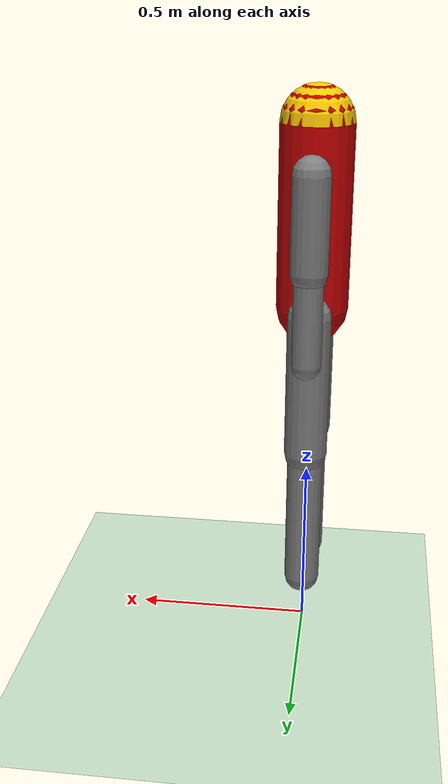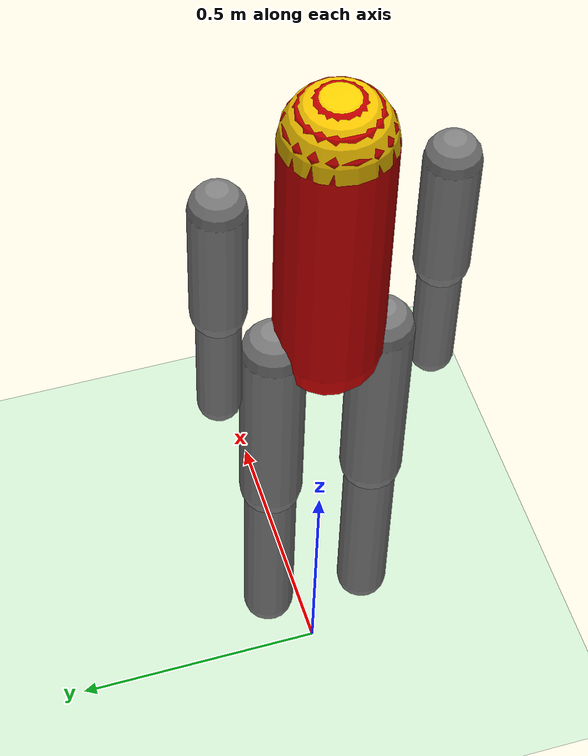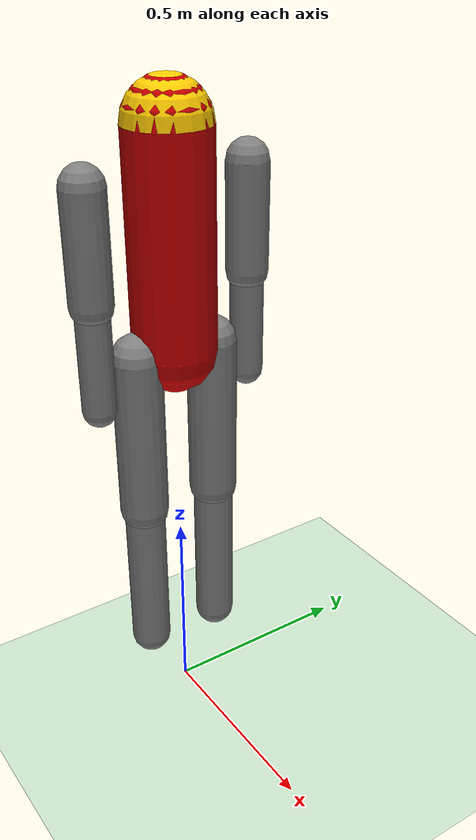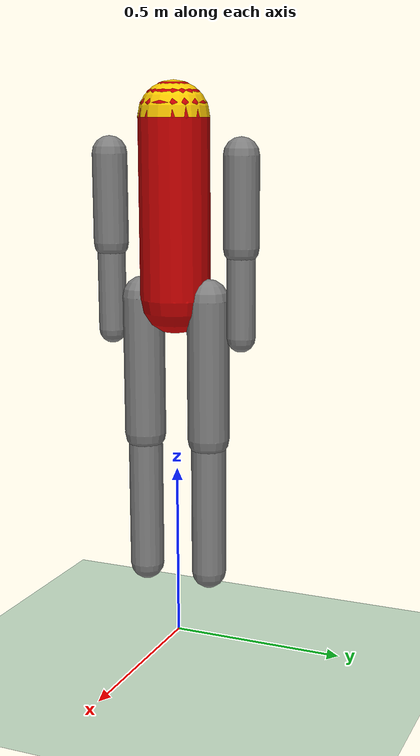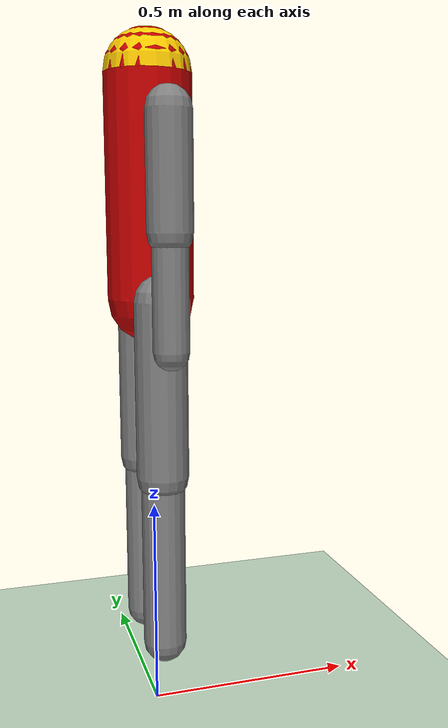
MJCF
<mujoco model="simple_humanoid">
    <compiler angle="degree" coordinate="local"/>
    <option timestep="0.01" gravity="0 0 -9.81" integrator="Euler"/>

    <worldbody>
        <!-- 地面 -->
        <geom name="floor" type="plane" size="5 5 0.1" rgba="0.8 0.9 0.8 1"/>

        <!-- 躯干 -->
        <body name="torso" pos="0 0 1">
            <joint name="torso_fixed" type="free"/>
            <geom name="torso_geom" type="capsule" fromto="0 0 0 0 0 0.5" size="0.1" rgba="0.8 0 0 1"/>

            <body name="head" pos="0 0 0.5">
                <joint name="neck" type="hinge" axis="0 1 0" range="-45 45"/>
                <geom name="head_geom" type="sphere" size="0.1" rgba="1 0.8 0 1"/>
            </body>

            <!-- 左臂 -->
            <body name="left_arm" pos="0 0.2 0.4">
                <joint name="left_shoulder" type="hinge" axis="1 0 0" range="-90 90"/>
                <geom name="upper_arm_left" type="capsule" fromto="0 0 0 0 0 -0.25" size="0.05"/>
                <body name="left_forearm" pos="0 0 -0.25">
                    <joint name="left_elbow" type="hinge" axis="1 0 0" range="0 150"/>
                    <geom name="forearm_left" type="capsule" fromto="0 0 0 0 0 -0.25" size="0.04"/>
                </body>
            </body>

            <!-- 右臂 -->
            <body name="right_arm" pos="0 -0.2 0.4">
                <joint name="right_shoulder" type="hinge" axis="1 0 0" range="-90 90"/>
                <geom name="upper_arm_right" type="capsule" fromto="0 0 0 0 0 -0.25" size="0.05"/>
                <body name="right_forearm" pos="0 0 -0.25">
                    <joint name="right_elbow" type="hinge" axis="1 0 0" range="0 150"/>
                    <geom name="forearm_right" type="capsule" fromto="0 0 0 0 0 -0.25" size="0.04"/>
                </body>
            </body>

            <!-- 左腿 -->
            <body name="left_leg" pos="0 0.1 0">
                <joint name="left_hip" type="hinge" axis="1 0 0" range="-60 60"/>
                <geom name="thigh_left" type="capsule" fromto="0 0 0 0 0 -0.4" size="0.06"/>
                <body name="left_shin" pos="0 0 -0.4">
                    <joint name="left_knee" type="hinge" axis="1 0 0" range="0 150"/>
                    <geom name="shin_left" type="capsule" fromto="0 0 0 0 0 -0.4" size="0.05"/>
                </body>
            </body>

            <!-- 右腿 -->
            <body name="right_leg" pos="0 -0.1 0">
                <joint name="right_hip" type="hinge" axis="1 0 0" range="-60 60"/>
                <geom name="thigh_right" type="capsule" fromto="0 0 0 0 0 -0.4" size="0.06"/>
                <body name="right_shin" pos="0 0 -0.4">
                    <joint name="right_knee" type="hinge" axis="1 0 0" range="0 150"/>
                    <geom name="shin_right" type="capsule" fromto="0 0 0 0 0 -0.4" size="0.05"/>
                </body>
            </body>

        </body>
    </worldbody>

<actuator>
    <position name="left_shoulder" joint="left_shoulder" kp="100"/>
    <position name="left_elbow" joint="left_elbow" kp="100"/>
    <position name="right_shoulder" joint="right_shoulder" kp="100"/>
    <position name="right_elbow" joint="right_elbow" kp="100"/>
    <position name="left_hip" joint="left_hip" kp="200"/>
    <position name="left_knee" joint="left_knee" kp="200"/>
    <position name="right_hip" joint="right_hip" kp="200"/>
    <position name="right_knee" joint="right_knee" kp="200"/>
    <position name="neck" joint="neck" kp="50"/>
</actuator>
</mujoco>
